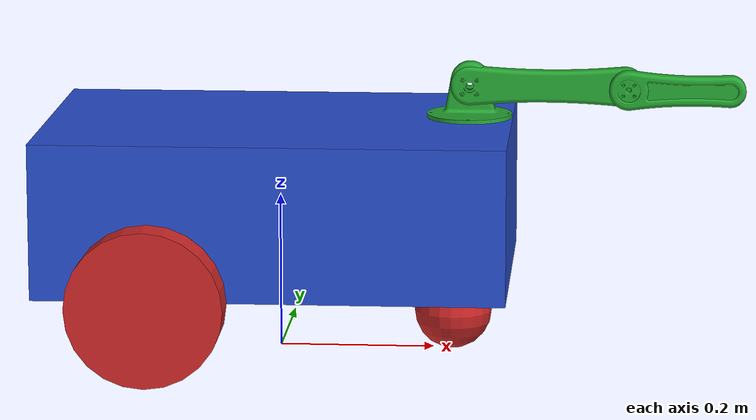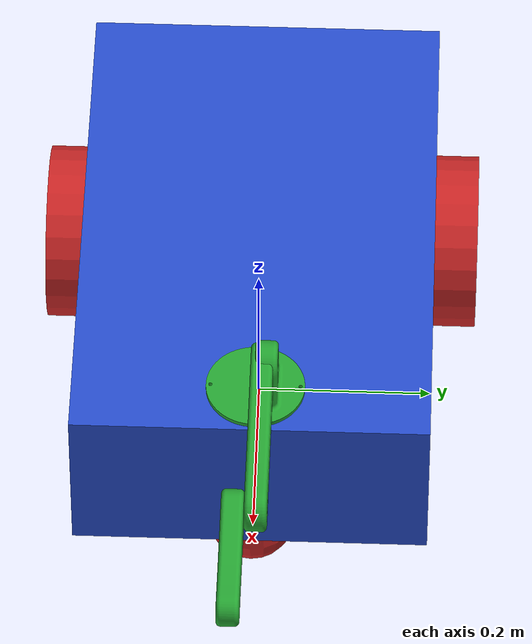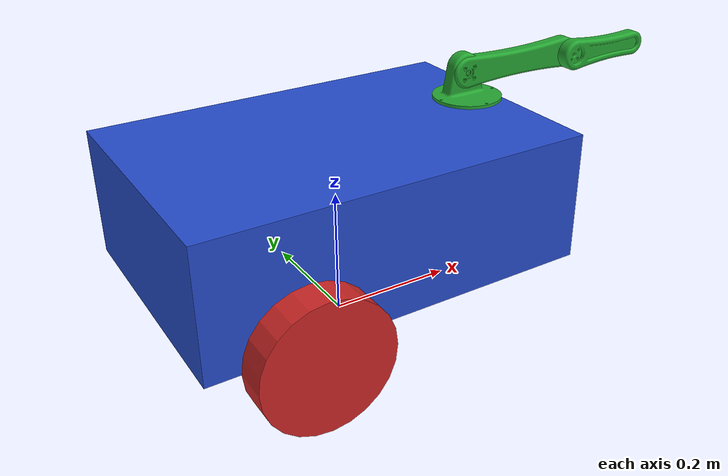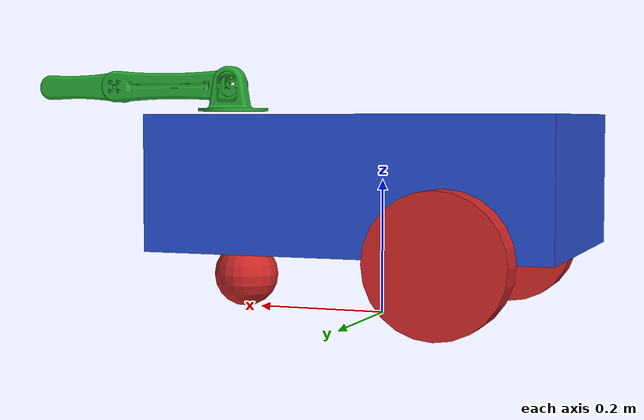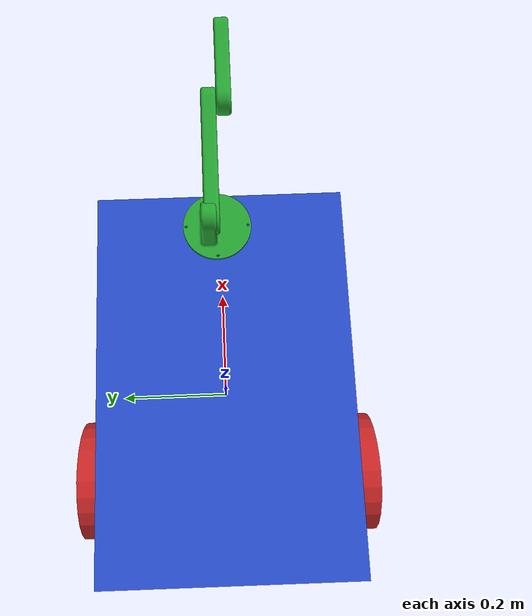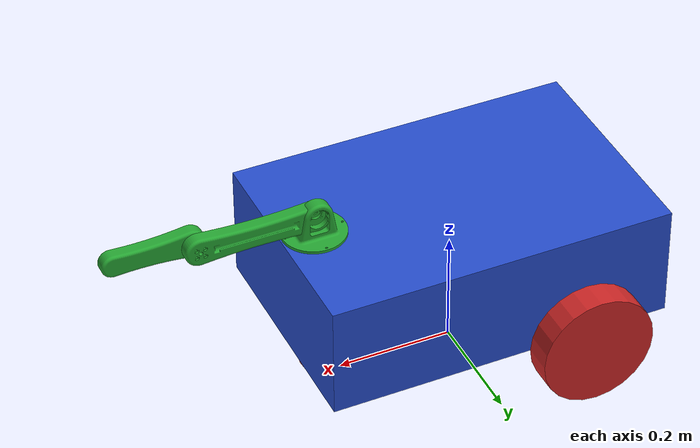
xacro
<?xml version="1.0"?>
<robot xmlns:xacro="http://www.ros.org/wiki/xacro">
    <xacro:property name="base_length" value="0.6" />
    <xacro:property name="base_width" value="0.4" />
    <xacro:property name="base_height" value="0.2" />
    <xacro:property name="wheel_radius" value="0.1"/>
    <xacro:property name="wheel_length" value="0.05"/>

    <xacro:include filename="arm_frame.xacro"/>

    <xacro:macro name="wheel_link" params="prefix">
      <link name="${prefix}_wheel_link">
        <visual>
            <geometry>
                <cylinder radius="${wheel_radius}" length="${wheel_length}"/>
            </geometry>
            <origin xyz="0 0 0" rpy="${pi/2} 0 0"/>
            <material name="red"/>
        </visual>
        <xacro:cylinder_inertia xyz="0 0 0" rpy="${pi/2} 0 0" m="1"
                                            r="${wheel_radius}" h="${wheel_length}"/>
        <collision>
  19       <origin xyz="0 0 0" rpy="${pi/2} 0 0"/>
  20       <geometry>
                <cylinder radius="${wheel_radius}" length="${wheel_length}"/>
            </geometry>

             <surface>
                    <contact>
                        <ode>
                            <mu>0.5</mu>
                            <mu2>0.5</mu2>
                        </ode>
                    </contact>
             </surface>
  23    </collision>
      </link>
    </xacro:macro>
    <xacro:wheel_link prefix="right"/>
    <xacro:wheel_link prefix="left"/>

    <link name="base_link">
        <visual>
            <geometry>
                <box size = "${base_length} ${base_width} ${base_height}"/>
            </geometry>
            <origin xyz="0 0 0.1" rpy="0 0 0"/>
            <material name="blue"/>
        </visual>
        <xacro:box_inertia xyz="0 0 0.1" rpy="0 0 0" m="3"
                                        d="${base_length}" w="${base_width}" h="${base_height}"/>
        <collision>

            <origin xyz="0 0 0.1" rpy="0 0 0"/>
  20      <geometry>
                <box size = "${base_length} ${base_width} ${base_height}"/>
            </geometry>
  23    </collision>
    </link>

    <joint name="base_right_wheel_joint" type="continuous">
        <parent link="base_link"/>
        <child link="right_wheel_link"/>
        <origin xyz= "${-base_length/4.0} ${(base_width/2.0)+(wheel_length/2.0)} 0" rpy="0 0 0"/>
        <axis xyz="0 1 0"/>
    </joint>

    <joint name="base_left_wheel_joint" type="continuous">
        <parent link="base_link"/>
        <child link="left_wheel_link"/>
        <origin xyz= "${-base_length/4.0} ${-((base_width/2.0)+(wheel_length/2.0))} 0" rpy="0 0 0"/>
        <axis xyz="0 1 0"/>
    </joint>

    <link name="caster_wheel_link">
        <visual>
            <geometry>
                <sphere radius="0.05"/>
            </geometry>
            <origin xyz="0 0 0" rpy="0 0 0"/>
            <material name="red"/>
        </visual>
        <xacro:sphere_inertia xyz="0 0 0" rpy="0 0 0" m="0.5"
                                            r="0.05" />
        <collision>

            <origin xyz="0 0 0" rpy="0 0 0"/>
  20        <geometry>
                <sphere radius="0.05"/>
            </geometry>
            <surface>
                <contact>
                    <ode>
                        <mu>0.01</mu>
                        <mu2>0.01</mu2>
                    </ode>
                </contact>
            </surface>
  23    </collision>
    </link>

    <joint name="base_caster_wheel_joint" type="continuous">
        <parent link="base_link"/>
        <child link="caster_wheel_link"/>
        <origin xyz= "0.225 0 -0.05" rpy="0 0 0"/>
        <axis xyz="0 0 1"/>

    </joint>

     <joint name="base_armbase_joint" type = "fixed">
        <parent link="base_link"/>
        <child link="arm_base"/>
        <origin xyz="${(base_length/2)-0.05} 0 ${base_height}" rpy="0 0 0"/>
    </joint>

    <link name="base_footprint"/>
    <joint name="base_joint" type="fixed">
        <parent link="base_footprint"/>
        <child link="base_link"/>
        <origin xyz= "0 0 0.1" rpy="0 0 0"/>
    </joint>
</robot>

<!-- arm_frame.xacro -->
<robot  xmlns:xacro="http://www.ros.org/wiki/xacro">
    <link name="arm_base">
        <visual>
            <geometry>
                    <mesh filename="file:///home/mustafa/ros2_ws/src/mr_pinchy_robot_description/meshes/arm_base.stl" scale="0.001 0.001 0.001"/>

            </geometry>
            <origin xyz="-0.06 -0.05 -0.05" rpy="${pi/2} 0 ${pi/2}"/>
        </visual>
         <xacro:default_inertial />
         <collision>
            <origin xyz="-0.06 -0.05 -0.05" rpy="${pi/2} 0 ${pi/2}"/>
  20      <geometry>
                <box size = "0.05 0.05 0.05"/>
            </geometry>
  23    </collision>
    </link>

     <link name="arm_link_1">
        <visual>
            <geometry>
            <mesh filename="file:///home/mustafa/ros2_ws/src/mr_pinchy_robot_description/meshes/link_1.stl" scale="0.001 0.001 0.001"/>

                    <mesh filename="package://mr_pinchy_robot_description/meshes/link_1.stl" scale="0.001 0.001 0.001"/>
            </geometry>
            <origin xyz="-0.03 0 -0.02" rpy="${pi/2} 0 ${pi/2}"/>
        </visual>
        <collision>
            <origin xyz="-0.03 0 -0.02" rpy="${pi/2} 0 ${pi/2}"/>
  20      <geometry>
                <box size = "0.2 0.05 0.05"/>
            </geometry>
  23    </collision>
        <xacro:default_inertial />
    </link>

    <link name="arm_link_2">
        <visual>
            <geometry>
                        <mesh filename="file:///home/mustafa/ros2_ws/src/mr_pinchy_robot_description/meshes/link_2.stl" scale="0.001 0.001 0.001"/>

            </geometry>
            <origin xyz="0.15 0 -0.02" rpy="${pi/2} 0 ${1.5*pi }"/>
        </visual>
        <collision>
            <origin xyz="0.15 0 -0.02" rpy="${pi/2} 0 ${1.5*pi }"/>
  20      <geometry>
                <box size = "0.2 0.05 0.05"/>
            </geometry>
  23    </collision>
         <xacro:default_inertial />
    </link>

    <joint name="armbase_link1_joint" type = "revolute">
        <parent link="arm_base"/>
        <child link="arm_link_1"/>
        <origin xyz="0 0 0.04" rpy="0 0 0"/>
        <axis xyz="0 1 0"/>
        <limit lower="${-pi/2}" upper="0" effort="100" velocity="100"/>
    </joint>

    <joint name="link1_link2_joint" type = "revolute">
        <parent link="arm_link_1"/>
        <child link="arm_link_2"/>
        <origin xyz="0.2 0 0" rpy="0 0 0"/>
        <axis xyz="0 1 0"/>
        <limit lower="${-pi/2}" upper="${pi/2}" effort="100" velocity="100"/>
    </joint>

    <gazebo reference="arm_base">
        <material>Gazebo/Green</material>
    </gazebo>
    <gazebo reference="arm_link_1">
        <material>Gazebo/Green</material>
    </gazebo>
    <gazebo reference="arm_link_2">
        <material>Gazebo/Green</material>
    </gazebo>

<transmission name="armbase_link1_joint_trans">
  <type>transmission_interface/SimpleTransmission</type>
  <joint name="armbase_link1_joint">
    <hardwareInterface>position</hardwareInterface>
  </joint>
  <actuator name="base_link1_ac">
    <hardwareInterface>position</hardwareInterface>
    <mechanicalReduction>1</mechanicalReduction>
  </actuator>
</transmission>

<transmission name="link1_2_trans">
  <type>transmission_interface/SimpleTransmission</type>
  <joint name="link1_link2_joint">
    <hardwareInterface>position</hardwareInterface>
  </joint>
  <actuator name="link1_link2_ac">
    <hardwareInterface>position</hardwareInterface>
    <mechanicalReduction>1</mechanicalReduction>
  </actuator>
</transmission>

    <ros2_control name="RobotHardware" type="system" >
        <hardware>
      <plugin>gz_ros2_control/GazeboSimSystem</plugin>
        </hardware>
        <joint name="armbase_link1_joint">
    <command_interface name="position"/>
    <state_interface name="position"/>
  </joint>

  <joint name="link1_link2_joint">
    <command_interface name="position"/>
    <state_interface name="position"/>
  </joint>
    </ros2_control>

</robot>
